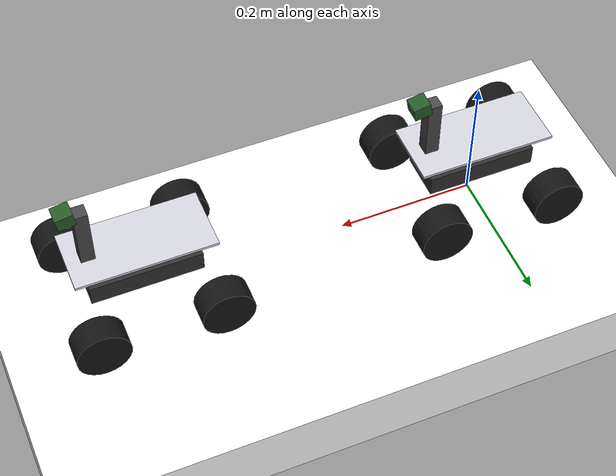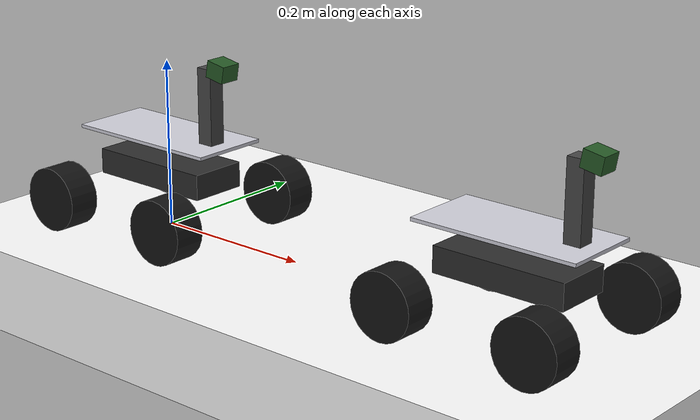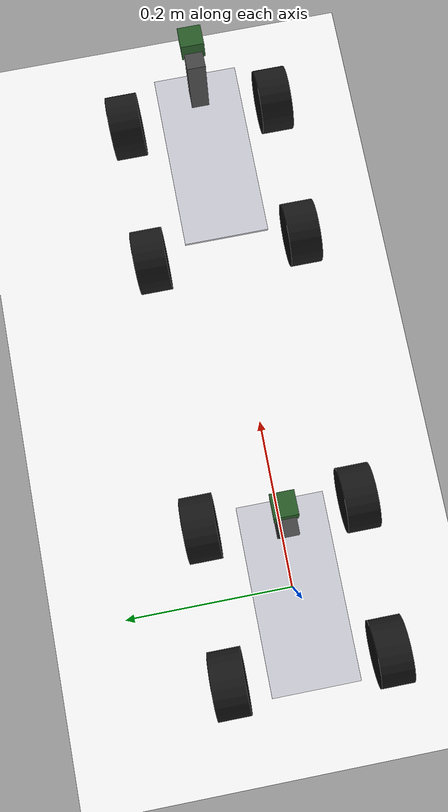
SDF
<?xml version="1.0" ?>
<sdf version="1.10">
  <world name="default">
    <gravity>0 0 -9.8</gravity>

    <scene>
      <!-- Hide the reference grid overlay in the viewport -->
      <grid>false</grid>

      <!-- Enable shadow casting (works with directional lights below) -->
      <shadows>true</shadows>

      <!-- Scene-wide ambient fill light (RGBA, range 0-1).
           Default is ~0.4; increase toward 1.0 for brighter fill,
           decrease for a more dramatic, shadowed look. -->
      <ambient>0.6 0.6 0.6 1</ambient>

      <!-- Viewport background color, used as a fallback if the
           procedural sky below is not supported by the renderer. -->
      <background>0.4 0.6 0.9 1</background>

      <sky/>
    </scene>

    <light type="directional" name="sun">
      <cast_shadows>true</cast_shadows>
      <pose>0 0 10 0 0 0</pose>
      <diffuse>0.9 0.9 0.9 1</diffuse>
      <specular>0.3 0.3 0.3 1</specular>
      <direction>-0.4 0.2 -1</direction>
    </light>

    <model name="ground_plane">
      <static>true</static>
      <link name="link">
        <collision name="collision">
          <pose>0 0 -0.05 0 0 0</pose>
          <geometry>
            <box>
              <size>20 20 0.1</size>
            </box>
          </geometry>
        </collision>
        <visual name="visual">
          <pose>0 0 -0.05 0 0 0</pose>
          <geometry>
            <box>
              <size>20 20 0.1</size>
            </box>
          </geometry>
          <material>
            <!-- ambient/diffuse set to white so the PNG texture
                 is displayed without any color tinting. -->
            <ambient>1.0 1.0 1.0 1</ambient>
            <diffuse>1.0 1.0 1.0 1</diffuse>
            <!-- PBR albedo map: the gz-sim (Ogre2) way to apply a PNG
                 texture.  The old Ogre1 .material script format is NOT
                 XML and will cause a parse error if used here. -->
            <pbr>
              <metal>
                <albedo_map>file:///workspace/Projects/gazebo_demo/worlds/course.png</albedo_map>
              </metal>
            </pbr>
          </material>
        </visual>
      </link>
    </model>

    <include>
      <uri>model://ackermann_car</uri>
      <name>car1</name>
      <pose>0 0 0 0 0 0</pose>
      <plugin filename="gz-sim-ackermann-steering-system"
              name="gz::sim::systems::AckermannSteering">
        <topic>/model/car1/cmd_vel</topic>
        <left_joint>rear_left_wheel_joint</left_joint>
        <right_joint>rear_right_wheel_joint</right_joint>
        <left_steering_joint>front_left_steer_joint</left_steering_joint>
        <right_steering_joint>front_right_steer_joint</right_steering_joint>
        <wheel_base>0.175</wheel_base>
        <wheel_separation>0.18415</wheel_separation>
        <kingpin_width>0.18415</kingpin_width>
        <wheel_radius>0.0381</wheel_radius>
        <steering_limit>0.6</steering_limit>
        <steer_p_gain>12</steer_p_gain>
        <min_velocity>-1.5</min_velocity>
        <max_velocity>1.5</max_velocity>
        <min_acceleration>-3.0</min_acceleration>
        <max_acceleration>3.0</max_acceleration>
        <odom_publish_frequency>30</odom_publish_frequency>
      </plugin>
    </include>

    <include>
      <uri>model://ackermann_car</uri>
      <name>car2</name>
      <pose>0.5 0 0 0 0 0</pose>
      <plugin filename="gz-sim-ackermann-steering-system"
              name="gz::sim::systems::AckermannSteering">
        <topic>/model/car2/cmd_vel</topic>
        <left_joint>rear_left_wheel_joint</left_joint>
        <right_joint>rear_right_wheel_joint</right_joint>
        <left_steering_joint>front_left_steer_joint</left_steering_joint>
        <right_steering_joint>front_right_steer_joint</right_steering_joint>
        <wheel_base>0.175</wheel_base>
        <wheel_separation>0.18415</wheel_separation>
        <kingpin_width>0.18415</kingpin_width>
        <wheel_radius>0.0381</wheel_radius>
        <steering_limit>0.6</steering_limit>
        <steer_p_gain>12</steer_p_gain>
        <min_velocity>-1.5</min_velocity>
        <max_velocity>1.5</max_velocity>
        <min_acceleration>-3.0</min_acceleration>
        <max_acceleration>3.0</max_acceleration>
        <odom_publish_frequency>30</odom_publish_frequency>
      </plugin>
    </include>

    <plugin filename="gz-sim-physics-system"
            name="gz::sim::systems::Physics"/>
    <plugin filename="gz-sim-scene-broadcaster-system"
            name="gz::sim::systems::SceneBroadcaster"/>
    <plugin filename="gz-sim-sensors-system"
            name="gz::sim::systems::Sensors"/>
    <plugin filename="gz-sim-user-commands-system"
            name="gz::sim::systems::UserCommands"/>
  </world>
</sdf>

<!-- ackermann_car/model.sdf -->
<sdf version="1.10">
  <model name="ackermann_car">
    <static>false</static>
    <self_collide>false</self_collide>

    <link name="chassis">
      <pose>0 0 0.08 0 0 0</pose>
      <inertial>
        <mass>1.384</mass>
        <inertia>
          <ixx>0.0073</ixx>
          <iyy>0.0091</iyy>
          <izz>0.0131</izz>
          <ixy>0</ixy>
          <ixz>0</ixz>
          <iyz>0</iyz>
        </inertia>
      </inertial>

      <collision name="base_collision">
        <pose>0 0 -0.01 0 0 0</pose>
        <geometry>
          <box>
            <size>0.16 0.07 0.03</size>
          </box>
        </geometry>
      </collision>

      <collision name="platform_collision">
        <pose>0 0 0.032 0 0 0</pose>
        <geometry>
          <box>
            <size>0.2 0.095 0.004</size>
          </box>
        </geometry>
      </collision>

      <collision name="tower_collision">
        <pose>0.07 0 0.079 0 0 0</pose>
        <geometry>
          <box>
            <size>0.02 0.02 0.09</size>
          </box>
        </geometry>
      </collision>

      <visual name="base_visual">
        <pose>0 0 -0.01 0 0 0</pose>
        <geometry>
          <box>
            <size>0.16 0.07 0.03</size>
          </box>
        </geometry>
        <material>
          <ambient>0.12 0.12 0.12 1</ambient>
          <diffuse>0.18 0.18 0.18 1</diffuse>
        </material>
      </visual>

      <visual name="platform_visual">
        <pose>0 0 0.032 0 0 0</pose>
        <geometry>
          <box>
            <size>0.2 0.095 0.004</size>
          </box>
        </geometry>
        <material>
          <ambient>0.75 0.75 0.78 1</ambient>
          <diffuse>0.82 0.82 0.86 1</diffuse>
        </material>
      </visual>

      <visual name="tower_visual">
        <pose>0.07 0 0.079 0 0 0</pose>
        <geometry>
          <box>
            <size>0.02 0.02 0.09</size>
          </box>
        </geometry>
        <material>
          <ambient>0.2 0.2 0.2 1</ambient>
          <diffuse>0.28 0.28 0.28 1</diffuse>
        </material>
      </visual>
    </link>

    <link name="front_left_steering">
      <pose>0.0875 0.092075 0.0381 0 0 0</pose>
      <inertial>
        <mass>0.02</mass>
        <inertia>
          <ixx>0.000002</ixx>
          <iyy>0.000002</iyy>
          <izz>0.000002</izz>
          <ixy>0</ixy>
          <ixz>0</ixz>
          <iyz>0</iyz>
        </inertia>
      </inertial>
    </link>

    <link name="front_right_steering">
      <pose>0.0875 -0.092075 0.0381 0 0 0</pose>
      <inertial>
        <mass>0.02</mass>
        <inertia>
          <ixx>0.000002</ixx>
          <iyy>0.000002</iyy>
          <izz>0.000002</izz>
          <ixy>0</ixy>
          <ixz>0</ixz>
          <iyz>0</iyz>
        </inertia>
      </inertial>
    </link>

    <link name="front_left_wheel">
      <pose>0.0875 0.092075 0.0381 0 0 0</pose>
      <inertial>
        <mass>0.09</mass>
        <inertia>
          <ixx>0.000044</ixx>
          <iyy>0.000065</iyy>
          <izz>0.000044</izz>
          <ixy>0</ixy>
          <ixz>0</ixz>
          <iyz>0</iyz>
        </inertia>
      </inertial>
      <collision name="collision">
        <geometry>
          <sphere>
            <radius>0.0381</radius>
          </sphere>
        </geometry>
        <surface>
          <friction>
            <ode>
              <mu>1.0</mu>
              <mu2>1.0</mu2>
            </ode>
          </friction>
        </surface>
      </collision>
      <visual name="visual">
        <pose>0 0 0 1.57079632679 0 0</pose>
        <geometry>
          <cylinder>
            <radius>0.0381</radius>
            <length>0.0381</length>
          </cylinder>
        </geometry>
        <material>
          <ambient>0.04 0.04 0.04 1</ambient>
          <diffuse>0.08 0.08 0.08 1</diffuse>
        </material>
      </visual>
    </link>

    <link name="front_right_wheel">
      <pose>0.0875 -0.092075 0.0381 0 0 0</pose>
      <inertial>
        <mass>0.09</mass>
        <inertia>
          <ixx>0.000044</ixx>
          <iyy>0.000065</iyy>
          <izz>0.000044</izz>
          <ixy>0</ixy>
          <ixz>0</ixz>
          <iyz>0</iyz>
        </inertia>
      </inertial>
      <collision name="collision">
        <geometry>
          <sphere>
            <radius>0.0381</radius>
          </sphere>
        </geometry>
        <surface>
          <friction>
            <ode>
              <mu>1.0</mu>
              <mu2>1.0</mu2>
            </ode>
          </friction>
        </surface>
      </collision>
      <visual name="visual">
        <pose>0 0 0 1.57079632679 0 0</pose>
        <geometry>
          <cylinder>
            <radius>0.0381</radius>
            <length>0.0381</length>
          </cylinder>
        </geometry>
        <material>
          <ambient>0.04 0.04 0.04 1</ambient>
          <diffuse>0.08 0.08 0.08 1</diffuse>
        </material>
      </visual>
    </link>

    <link name="rear_left_wheel">
      <pose>-0.0875 0.092075 0.0381 0 0 0</pose>
      <inertial>
        <mass>0.09</mass>
        <inertia>
          <ixx>0.000044</ixx>
          <iyy>0.000065</iyy>
          <izz>0.000044</izz>
          <ixy>0</ixy>
          <ixz>0</ixz>
          <iyz>0</iyz>
        </inertia>
      </inertial>
      <collision name="collision">
        <geometry>
          <sphere>
            <radius>0.0381</radius>
          </sphere>
        </geometry>
        <surface>
          <friction>
            <ode>
              <mu>1.0</mu>
              <mu2>1.0</mu2>
            </ode>
          </friction>
        </surface>
      </collision>
      <visual name="visual">
        <pose>0 0 0 1.57079632679 0 0</pose>
        <geometry>
          <cylinder>
            <radius>0.0381</radius>
            <length>0.0381</length>
          </cylinder>
        </geometry>
        <material>
          <ambient>0.04 0.04 0.04 1</ambient>
          <diffuse>0.08 0.08 0.08 1</diffuse>
        </material>
      </visual>
    </link>

    <link name="rear_right_wheel">
      <pose>-0.0875 -0.092075 0.0381 0 0 0</pose>
      <inertial>
        <mass>0.09</mass>
        <inertia>
          <ixx>0.000044</ixx>
          <iyy>0.000065</iyy>
          <izz>0.000044</izz>
          <ixy>0</ixy>
          <ixz>0</ixz>
          <iyz>0</iyz>
        </inertia>
      </inertial>
      <collision name="collision">
        <geometry>
          <sphere>
            <radius>0.0381</radius>
          </sphere>
        </geometry>
        <surface>
          <friction>
            <ode>
              <mu>1.0</mu>
              <mu2>1.0</mu2>
            </ode>
          </friction>
        </surface>
      </collision>
      <visual name="visual">
        <pose>0 0 0 1.57079632679 0 0</pose>
        <geometry>
          <cylinder>
            <radius>0.0381</radius>
            <length>0.0381</length>
          </cylinder>
        </geometry>
        <material>
          <ambient>0.04 0.04 0.04 1</ambient>
          <diffuse>0.08 0.08 0.08 1</diffuse>
        </material>
      </visual>
    </link>

    <link name="camera_link">
      <pose>0.09 0 0.204 0 0.174533 0</pose>
      <inertial>
        <mass>0.05</mass>
        <inertia>
          <ixx>0.000005</ixx>
          <iyy>0.000005</iyy>
          <izz>0.000005</izz>
          <ixy>0</ixy>
          <ixz>0</ixz>
          <iyz>0</iyz>
        </inertia>
      </inertial>
      <visual name="camera_body_visual">
        <geometry>
          <box>
            <size>0.025 0.025 0.02</size>
          </box>
        </geometry>
        <material>
          <ambient>0.1 0.22 0.1 1</ambient>
          <diffuse>0.15 0.35 0.15 1</diffuse>
        </material>
      </visual>
      <sensor name="front_camera" type="camera">
        <always_on>1</always_on>
        <update_rate>30</update_rate>
        <visualize>true</visualize>
        <camera>
          <horizontal_fov>1.047</horizontal_fov>
          <image>
            <width>640</width>
            <height>480</height>
            <format>R8G8B8</format>
          </image>
          <clip>
            <near>0.02</near>
            <far>100</far>
          </clip>
        </camera>
      </sensor>
    </link>

    <joint name="front_left_steer_joint" type="revolute">
      <parent>chassis</parent>
      <child>front_left_steering</child>
      <axis>
        <xyz>0 0 1</xyz>
        <limit>
          <lower>-0.6</lower>
          <upper>0.6</upper>
          <effort>100</effort>
          <velocity>5</velocity>
        </limit>
        <dynamics>
          <damping>0.4</damping>
        </dynamics>
      </axis>
    </joint>

    <joint name="front_right_steer_joint" type="revolute">
      <parent>chassis</parent>
      <child>front_right_steering</child>
      <axis>
        <xyz>0 0 1</xyz>
        <limit>
          <lower>-0.6</lower>
          <upper>0.6</upper>
          <effort>100</effort>
          <velocity>5</velocity>
        </limit>
        <dynamics>
          <damping>0.4</damping>
        </dynamics>
      </axis>
    </joint>

    <joint name="front_left_wheel_joint" type="revolute">
      <parent>front_left_steering</parent>
      <child>front_left_wheel</child>
      <axis>
        <xyz>0 1 0</xyz>
        <limit>
          <lower>-1000000</lower>
          <upper>1000000</upper>
          <effort>100</effort>
          <velocity>100</velocity>
        </limit>
        <dynamics>
          <damping>0.05</damping>
        </dynamics>
      </axis>
    </joint>

    <joint name="front_right_wheel_joint" type="revolute">
      <parent>front_right_steering</parent>
      <child>front_right_wheel</child>
      <axis>
        <xyz>0 1 0</xyz>
        <limit>
          <lower>-1000000</lower>
          <upper>1000000</upper>
          <effort>100</effort>
          <velocity>100</velocity>
        </limit>
        <dynamics>
          <damping>0.05</damping>
        </dynamics>
      </axis>
    </joint>

    <joint name="rear_left_wheel_joint" type="revolute">
      <parent>chassis</parent>
      <child>rear_left_wheel</child>
      <axis>
        <xyz>0 1 0</xyz>
        <limit>
          <lower>-1000000</lower>
          <upper>1000000</upper>
          <effort>100</effort>
          <velocity>100</velocity>
        </limit>
        <dynamics>
          <damping>0.05</damping>
        </dynamics>
      </axis>
    </joint>

    <joint name="rear_right_wheel_joint" type="revolute">
      <parent>chassis</parent>
      <child>rear_right_wheel</child>
      <axis>
        <xyz>0 1 0</xyz>
        <limit>
          <lower>-1000000</lower>
          <upper>1000000</upper>
          <effort>100</effort>
          <velocity>100</velocity>
        </limit>
        <dynamics>
          <damping>0.05</damping>
        </dynamics>
      </axis>
    </joint>

    <joint name="camera_mount_joint" type="fixed">
      <parent>chassis</parent>
      <child>camera_link</child>
    </joint>

  </model>
</sdf>
